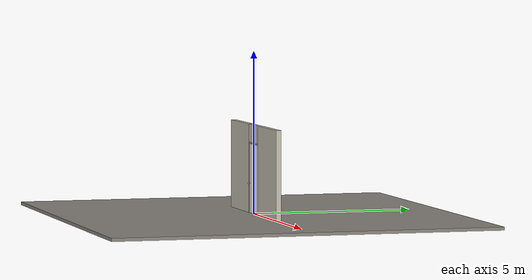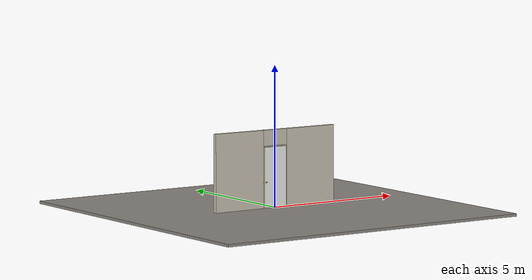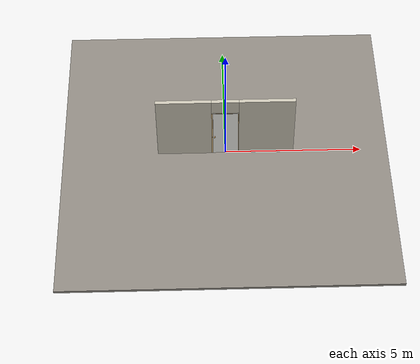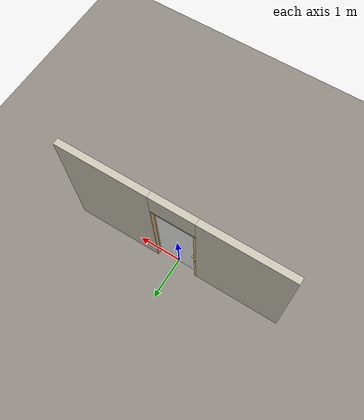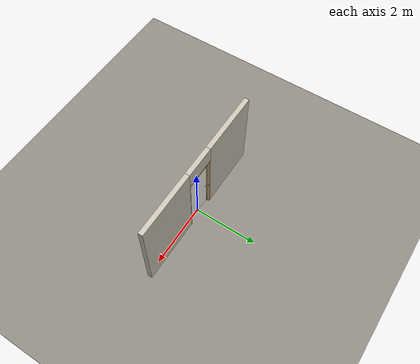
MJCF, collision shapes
<?xml version="1.0" ?>
<mujoco model="db0940_swing_single_simple">
  <compiler angle="radian" meshdir="../../hardware" texturedir="../../textures" autolimits="true" inertiafromgeom="false"/>
  <option timestep="0.002" integrator="implicitfast" cone="elliptic" impratio="10" noslip_iterations="3">
    <flag multiccd="enable"/>
  </option>
  <size memory="16M"/>
  <default>
    <geom condim="4" solref="0.005 1" solimp="0.95 0.99 0.001"/>
    <joint solreflimit="0.005 1" solimplimit="0.95 0.99 0.001"/>
    <tendon solreflimit="0.005 1"/>
    <equality solref="0.002 1"/>
  </default>
  <visual>
    <headlight ambient="0.4 0.4 0.4" diffuse="0.7 0.7 0.7" specular="0.2 0.2 0.2"/>
    <quality shadowsize="4096"/>
    <map znear="0.01" zfar="60"/>
  </visual>
  <asset>
    <mesh name="hinge_e3fd49fe13" file="hinge_e3fd49fe13.obj"/>
    <mesh name="hinge_jamb_e47eb19c39" file="hinge_jamb_e47eb19c39.obj"/>
    <mesh name="knob_d1888f6f03" file="knob_d1888f6f03.obj"/>
    <material name="mat_floor" rgba="0.55 0.53 0.5 1" specular="0.2" shininess="0.15" reflectance="0"/>
    <material name="mat_wall" rgba="0.78 0.76 0.7 1" specular="0.2" shininess="0.1" reflectance="0"/>
    <material name="mat_leaf" rgba="0.93 0.93 0.91 1" specular="0.2" shininess="0.43" reflectance="0"/>
    <material name="mat_leaf_louver" rgba="0.79 0.79 0.773 1" specular="0.2" shininess="0.4" reflectance="0"/>
    <material name="mat_hinge" rgba="0.65 0.66 0.68 1" specular="0.74" shininess="0.5" reflectance="0.36"/>
    <material name="mat_op_brass" rgba="0.85 0.66 0.3 1" specular="0.8" shininess="0.75" reflectance="0.4"/>
    <material name="mat_trim" rgba="0.85 0.66 0.3 1" specular="0.8" shininess="0.75" reflectance="0.4"/>
    <material name="mat_bolt" rgba="0.85 0.66 0.3 1" specular="0.8" shininess="0.75" reflectance="0.4"/>
    <material name="mat_frame" rgba="0.82 0.7 0.5 1" specular="0.2" shininess="0.45" reflectance="0"/>
    <texture name="skybox" type="skybox" builtin="gradient" rgb1="0.6 0.7 0.85" rgb2="0.9 0.92 0.95" width="256" height="256"/>
  </asset>
  <worldbody>
    <light name="sun" pos="1.5 -2.5 4" dir="-0.3 0.5 -0.8" directional="true" diffuse="0.8 0.8 0.8" specular="0.3 0.3 0.3" castshadow="true"/>
    <light name="fill" pos="-1.5 2.5 3" dir="0.3 -0.5 -0.7" directional="true" diffuse="0.35 0.35 0.4" castshadow="false"/>
    <camera name="robot_view" pos="0 -2.589812 1.812087" xyaxes="1 0 0 0 0.26963 0.962964" fovy="52"/>
    <camera name="far_view" pos="0 2.685812 1.812087" xyaxes="-1 0 0 0 -0.26963 0.962964" fovy="52"/>
    <camera name="iso" pos="-2.004737 -2.167762 2.234138" xyaxes="0.741536 -0.670913 0 0.242917 0.268487 0.932151" fovy="46"/>
    <camera name="detail_handle" pos="-0.2165 -0.864 1.194" xyaxes="0.97561 0.219512 0 -0.070934 0.315262 0.94635" fovy="38"/>
    <geom name="floor" type="box" size="6 6 0.05" pos="0 0 -0.05" material="mat_floor" group="0" contype="1" conaffinity="1" friction="0.8 0.005 0.0001" density="2400"/>
    <geom name="wall_left" type="box" size="0.99525 0.0725 1.3735" pos="-1.50475 0.048 1.3735" material="mat_wall" group="0" contype="1" conaffinity="1" friction="0.6 0.005 0.0001" density="800"/>
    <geom name="wall_right" type="box" size="1.01025 0.0725 1.3735" pos="1.48975 0.048 1.3735" material="mat_wall" group="0" contype="1" conaffinity="1" friction="0.6 0.005 0.0001" density="800"/>
    <geom name="wall_header" type="box" size="0.4945 0.0725 0.2755" pos="-0.015 0.048 2.4715" material="mat_wall" group="0" contype="1" conaffinity="1" friction="0.6 0.005 0.0001" density="800"/>
    <geom name="hinge_0_jamb" type="mesh" mesh="hinge_jamb_e47eb19c39" pos="0.4575 -0.0245 0.259" quat="0 0 1 0" material="mat_hinge" group="1" contype="0" conaffinity="0" density="7850"/>
    <geom name="hinge_1_jamb" type="mesh" mesh="hinge_jamb_e47eb19c39" pos="0.4575 -0.0245 1.076" quat="0 0 1 0" material="mat_hinge" group="1" contype="0" conaffinity="0" density="7850"/>
    <geom name="hinge_2_jamb" type="mesh" mesh="hinge_jamb_e47eb19c39" pos="0.4575 -0.0245 1.963" quat="0 0 1 0" material="mat_hinge" group="1" contype="0" conaffinity="0" density="7850"/>
    <geom name="jamb_hinge" type="box" size="0.0095 0.0725 1.0735" pos="0.47 0.048 1.0735" material="mat_frame" group="0" contype="1" conaffinity="1" friction="0.6 0.005 0.0001" density="400"/>
    <geom name="strike_914_wall_n" type="box" size="0.0245 0.056325 0.0167" pos="-0.485 0.064175 0.914" material="mat_frame" group="0" contype="1" conaffinity="1" friction="0.6 0.005 0.0001" density="400"/>
    <geom name="strike_914_wall_p" type="box" size="0.0245 0.008 0.0167" pos="-0.485 -0.01585 0.914" material="mat_frame" group="0" contype="1" conaffinity="1" friction="0.6 0.005 0.0001" density="400"/>
    <geom name="strike_914_ramp" type="box" size="0.0245 0.01649 0.0167" pos="-0.489636 -0.028673 0.914" quat="0.977148 0 0 -0.212558" material="mat_frame" group="0" contype="1" conaffinity="1" friction="0.12 0.005 0.0001" density="400"/>
    <geom name="strike_914_back" type="box" size="0.01615 0.00785 0.0167" pos="-0.49335 0 0.914" material="mat_frame" group="0" contype="1" conaffinity="1" friction="0.6 0.005 0.0001" density="400"/>
    <geom name="jamb_strike_0" type="box" size="0.0245 0.0725 0.44865" pos="-0.485 0.048 0.44865" material="mat_frame" group="0" contype="1" conaffinity="1" friction="0.6 0.005 0.0001" density="400"/>
    <geom name="jamb_strike_1" type="box" size="0.0245 0.0725 0.60815" pos="-0.485 0.048 1.53885" material="mat_frame" group="0" contype="1" conaffinity="1" friction="0.6 0.005 0.0001" density="400"/>
    <geom name="jamb_head" type="box" size="0.4945 0.0725 0.0095" pos="-0.015 0.048 2.1565" material="mat_frame" group="0" contype="1" conaffinity="1" friction="0.6 0.005 0.0001" density="400"/>
    <geom name="head_stud" type="box" size="0.4945 0.0725 0.015" pos="-0.015 0.048 2.181" material="mat_wall" group="0" contype="1" conaffinity="1" friction="0.6 0.005 0.0001" density="500"/>
    <geom name="stop_hinge" type="box" size="0.0055 0.016 1.0735" pos="0.455 0.034 1.0735" material="mat_frame" group="0" contype="1" conaffinity="1" friction="0.6 0.005 0.0001" density="400"/>
    <geom name="stop_strike" type="box" size="0.0055 0.016 1.0735" pos="-0.455 0.034 1.0735" material="mat_frame" group="0" contype="1" conaffinity="1" friction="0.6 0.005 0.0001" density="400"/>
    <geom name="stop_head" type="box" size="0.4605 0.016 0.0055" pos="0 0.034 2.1415" material="mat_frame" group="0" contype="1" conaffinity="1" friction="0.6 0.005 0.0001" density="400"/>
    <site name="approach_point" pos="0 -1.5 0" quat="1 0 0 0" size="0.05" rgba="0.2 0.9 0.2 0.5" group="4"/>
    <site name="goal_point" pos="0 1.5 0" quat="1 0 0 0" size="0.05" rgba="0.2 0.9 0.2 0.5" group="4"/>
    <site name="door_plane_center" pos="0 0 1.0735" quat="1 0 0 0" size="0.02" rgba="0.2 0.9 0.2 0.5" group="4"/>
    <body name="leaf" pos="0.4605 0 0">
      <inertial pos="-0.441266 -0.000695 1.076836" mass="16.233285" quat="0.500621 -0.498575 0.501403 0.499396" diaginertia="1.223004523 6.229528799 7.448834362"/>
      <joint name="leaf_hinge" type="hinge" axis="0 0 1" pos="-0.003 -0.0245 0" limited="true" range="0 1.919862" damping="0.318966" frictionloss="0.269281" armature="0.02"/>
      <geom name="leaf_slab" type="box" size="0.457 0.0175 1.067" pos="-0.46 0 1.076" material="mat_leaf" group="0" contype="1" conaffinity="1" friction="0.35 0.005 0.0001" density="1"/>
      <geom name="hinge_0" type="mesh" mesh="hinge_e3fd49fe13" pos="-0.003 -0.0245 0.259" quat="0 0 1 0" material="mat_hinge" group="1" contype="0" conaffinity="0" density="7850"/>
      <geom name="hinge_1" type="mesh" mesh="hinge_e3fd49fe13" pos="-0.003 -0.0245 1.076" quat="0 0 1 0" material="mat_hinge" group="1" contype="0" conaffinity="0" density="7850"/>
      <geom name="hinge_2" type="mesh" mesh="hinge_e3fd49fe13" pos="-0.003 -0.0245 1.963" quat="0 0 1 0" material="mat_hinge" group="1" contype="0" conaffinity="0" density="7850"/>
      <geom name="leaf_latch_bolt_faceplate" type="box" size="0.0006 0.01235 0.0267" pos="-0.9164 0 0.914" material="mat_bolt" group="1" contype="0" conaffinity="0" density="8500"/>
      <site name="leaf_edge_mid" pos="-0.917 0 1.067" quat="1 0 0 0" size="0.02" rgba="0.2 0.9 0.2 0.5" group="4"/>
      <body name="leaf_handle" pos="-0.857 0 0.914">
        <inertial pos="0 0 0" mass="1.098683" quat="0.5 0.5 0.5 0.5" diaginertia="0.000311555 0.003696071 0.003696071"/>
        <joint name="leaf_handle_hinge" type="hinge" axis="0 1 0" limited="true" range="0 0.87" damping="0.143613" frictionloss="0.038" stiffness="0.5" springref="-0.5" armature="0.01"/>
        <geom name="leaf_handle_knob_n" type="mesh" mesh="knob_d1888f6f03" pos="0 -0.0175 0" quat="0 0 -0.707107 0.707107" material="mat_op_brass" group="1" contype="0" conaffinity="0" density="3000"/>
        <geom name="leaf_handle_knob_col_n" type="sphere" size="0.0243" pos="0 -0.064 0" material="mat_op_brass" group="0" contype="1" conaffinity="1" friction="0.9 0.01 0.0001" density="3000"/>
        <geom name="leaf_handle_knob_neck_n" type="cylinder" size="0.011 0.012" pos="0 -0.0295 0" quat="0.707107 -0.707107 0 0" material="mat_op_brass" group="3" contype="1" conaffinity="1" rgba="0.8 0.3 0.3 0.25" friction="0.6 0.005 0.0001" density="3000"/>
        <geom name="leaf_handle_knob_p" type="mesh" mesh="knob_d1888f6f03" pos="0 0.0175 0" quat="0 0 0.707107 0.707107" material="mat_op_brass" group="1" contype="0" conaffinity="0" density="3000"/>
        <geom name="leaf_handle_knob_col_p" type="sphere" size="0.0243" pos="0 0.064 0" material="mat_op_brass" group="0" contype="1" conaffinity="1" friction="0.9 0.01 0.0001" density="3000"/>
        <geom name="leaf_handle_knob_neck_p" type="cylinder" size="0.011 0.012" pos="0 0.0295 0" quat="0.707107 -0.707107 0 0" material="mat_op_brass" group="3" contype="1" conaffinity="1" rgba="0.8 0.3 0.3 0.25" friction="0.6 0.005 0.0001" density="3000"/>
        <site name="leaf_handle_grip_n" pos="0 -0.064 0" quat="1 0 0 0" size="0.012" rgba="0.2 0.9 0.2 0.5" group="4"/>
        <site name="leaf_handle_grip_p" pos="0 0.064 0" quat="1 0 0 0" size="0.012" rgba="0.2 0.9 0.2 0.5" group="4"/>
      </body>
      <body name="leaf_latch_bolt" pos="-0.917 0 0.914">
        <inertial pos="0.00865 0 0" mass="0.041419" quat="0.92388 0.382683 0 0" diaginertia="0.000000798 0.000005598 0.000005598"/>
        <joint name="leaf_latch_bolt_slide" type="slide" axis="1 0 0" limited="true" range="0 0.0127" damping="2" frictionloss="0.3" stiffness="300" springref="-0.008333" armature="0.1"/>
        <geom name="leaf_latch_bolt_capsule" type="capsule" size="0.00635 0.015" pos="0.00865 0 0" quat="0.707107 0 -0.707107 0" material="mat_bolt" group="0" contype="1" conaffinity="1" friction="0.2 0.005 0.0001" density="8500"/>
      </body>
    </body>
  </worldbody>
  <tendon>
    <fixed name="leaf_latch_bolt_coupling" limited="true" range="0 10">
      <joint joint="leaf_latch_bolt_slide" coef="1"/>
      <joint joint="leaf_handle_hinge" coef="-0.015679"/>
    </fixed>
  </tendon>
  <sensor>
    <jointpos name="leaf_hinge_pos" joint="leaf_hinge"/>
    <jointvel name="leaf_hinge_vel" joint="leaf_hinge"/>
    <jointpos name="leaf_handle_hinge_pos" joint="leaf_handle_hinge"/>
    <jointvel name="leaf_handle_hinge_vel" joint="leaf_handle_hinge"/>
    <jointpos name="leaf_latch_bolt_slide_pos" joint="leaf_latch_bolt_slide"/>
    <jointvel name="leaf_latch_bolt_slide_vel" joint="leaf_latch_bolt_slide"/>
  </sensor>
</mujoco>
